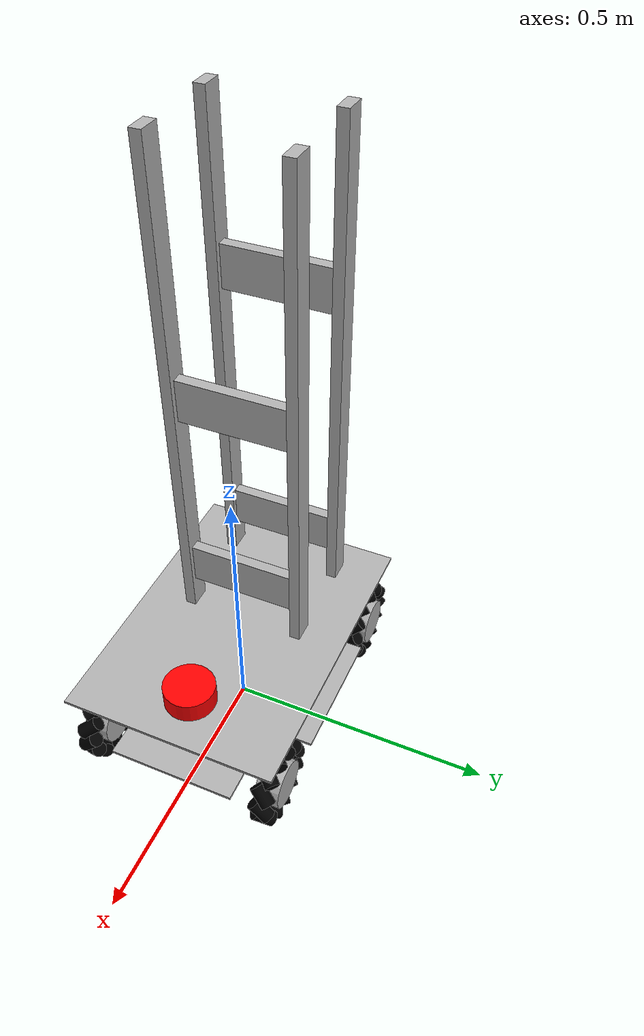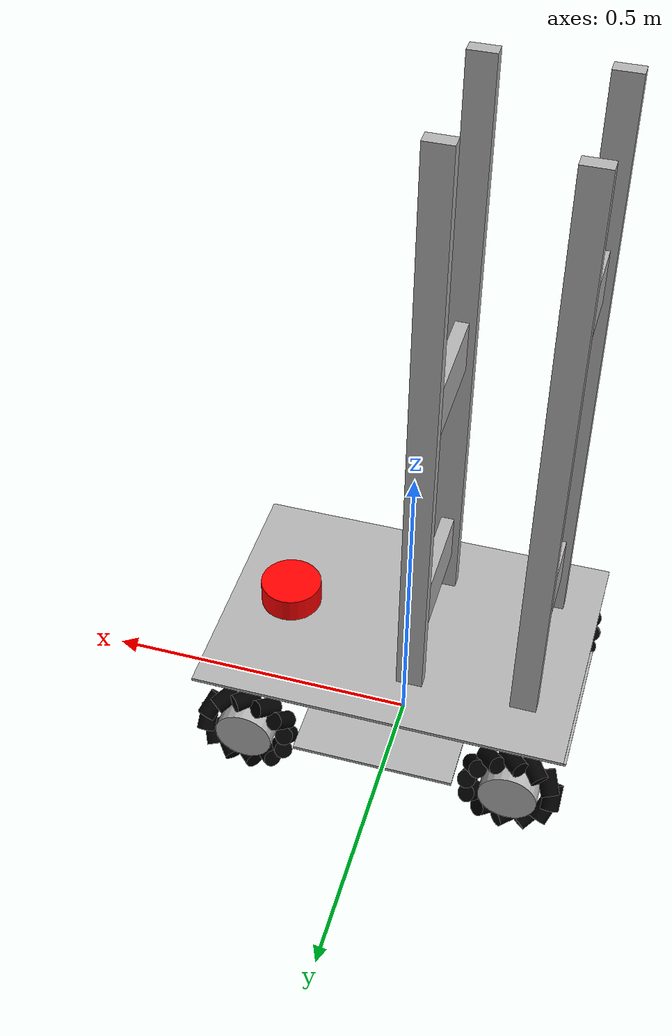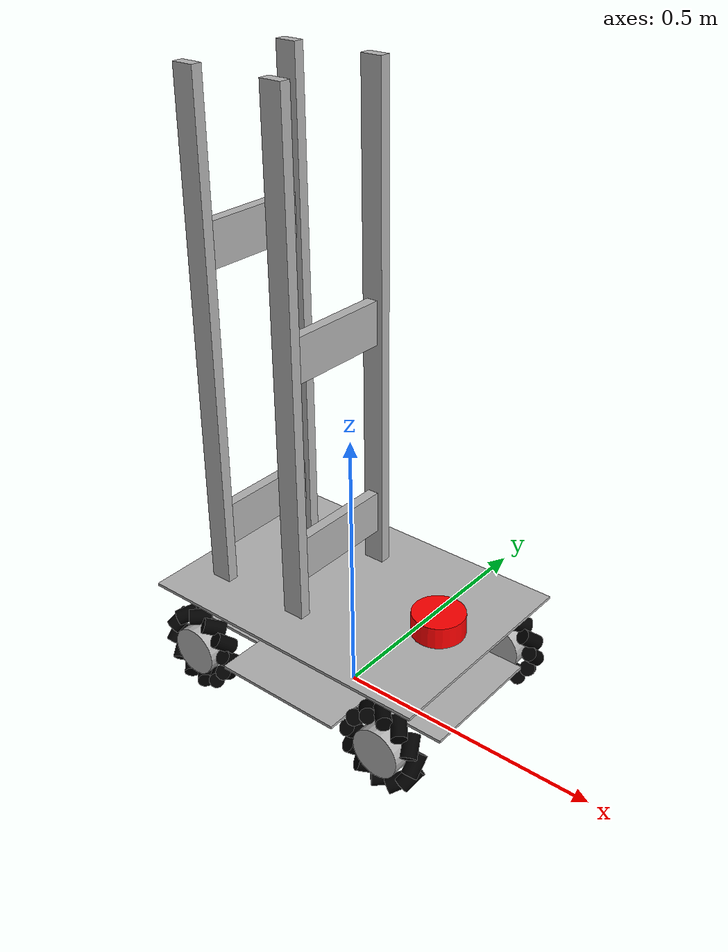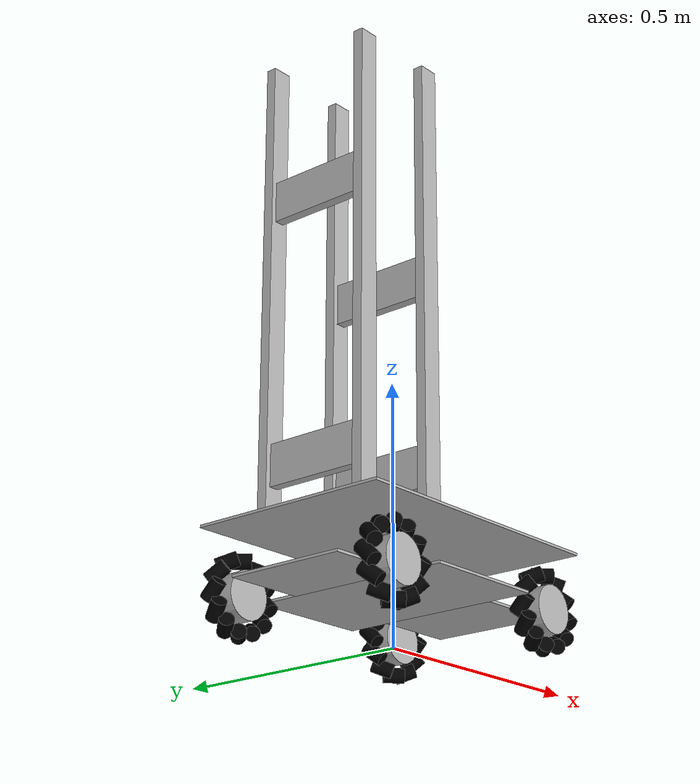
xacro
<?xml version="1.0"?>
<robot name="martha" xmlns:xacro="http://www.ros.org/wiki/xacro">

    <xacro:arg name="drive" default="mecanum" />
    <xacro:arg name="controllers_file" default="$(find martha_nav)/config/controllers.yaml" />
    <xacro:arg name="lidar_samples" default="360" />
    <xacro:arg name="lidar_visualize" default="false" />
    <!-- tower: the aluminium tower on the chassis (ROBOTS['martha_tower']). "false" is the
         robot ROBOTS['martha'] was trained for, without it. -->
    <xacro:arg name="tower" default="true" />

    <material name="black"><color rgba="0 0 0 1" /></material>
    <material name="grey"><color rgba="0.7 0.7 0.7 1" /></material>
    <material name="red"><color rgba="1 0 0 1" /></material>

    <!-- Chassis: a narrow front and rear plate around a wider centre plate. -->
    <xacro:property name="base_front_x" value="0.160" />
    <xacro:property name="base_center_x" value="0.238" />
    <xacro:property name="base_rear_x" value="0.160" />
    <xacro:property name="base_narrow_y" value="0.240" />
    <xacro:property name="base_center_y" value="0.410" />
    <xacro:property name="base_z" value="0.025" />
    <xacro:property name="height_0" value="0.125" />
    <xacro:property name="wheel_length" value="0.045" />
    <xacro:property name="wheel_radius" value="0.075" />
    <!-- Mecanum wheel: a hub plus 12 rollers reaching 0.079 m from the axle. -->
    <xacro:property name="hub_radius" value="0.045" />
    <xacro:property name="roller_radius" value="0.014" />
    <xacro:property name="roller_length" value="0.040" />
    <xacro:property name="roller_mount_radius" value="0.065" />
    <xacro:property name="roller_angle" value="0.785398" />
    <!-- Where the original model puts them. The rollers reach 0.079 m from the axle,
         so the wheels end at 0.21 + 0.079 = 0.289 m, inside the contact shell below. -->
    <xacro:property name="wheel_pos_x" value="0.21" />
    <xacro:property name="wheel_pos_y" value="0.175" />
    <xacro:property name="wheel_pos_z" value="0.08" />
    <xacro:property name="lidar_length" value="0.04" />
    <xacro:property name="lidar_radius" value="0.0475" />
    <!-- lidar_offset_x of ROBOTS['martha'] or ['martha_tower'] in martha_nav/robots.py.
         With the tower, scan_z is the scan plane, 3.1 cm above the upper board it rests on. -->
    <xacro:property name="built" value="${'$(arg tower)' == 'true'}" />
    <xacro:property name="lidar_x" value="${0.19 if built else 0.2325}" />
    <xacro:property name="contact_shell_x" value="0.580" />
    <xacro:property name="contact_shell_y" value="0.410" />
    <xacro:property name="contact_shell_center_z" value="0.125" />
    <xacro:property name="contact_shell_height" value="0.200" />
    <xacro:property name="lidar_shell_clearance" value="0.010" />
    <xacro:property name="board_z" value="0.005" />
    <xacro:property name="board_center_x" value="0.250" />
    <xacro:property name="upper_board_x" value="0.570" />
    <xacro:property name="upper_board_y" value="0.405" />
    <xacro:property name="lower_board_top" value="0.095" />
    <xacro:property name="upper_board_top" value="0.200" />
    <xacro:property name="scan_z" value="${upper_board_top + 0.031}" />
    <xacro:property name="profile" value="0.020" />
    <xacro:property name="profile_kg_per_m" value="0.5" />
    <xacro:property name="post_sx" value="0.040" />
    <xacro:property name="post_sy" value="0.020" />
    <xacro:property name="post_x_front" value="-0.033" />
    <xacro:property name="post_x_rear" value="-0.208" />
    <xacro:property name="post_y" value="0.11" />
    <xacro:property name="post_height" value="0.91" />
    <xacro:property name="crossbar_sz" value="0.080" />
    <xacro:property name="crossbar_low" value="0.065" />
    <xacro:property name="crossbar_high_front" value="0.435" />
    <xacro:property name="crossbar_high_rear" value="0.585" />

    <!-- A plate of the chassis shape: narrow ends around a wider centre, centred at height z. -->
    <xacro:macro name="chassis_plate" params="center_x thickness z">
        <visual>
            <origin xyz="${center_x/2 + base_front_x/2} 0 ${z}"/>
            <geometry><box size="${base_front_x} ${base_narrow_y} ${thickness}"/></geometry>
            <material name="grey"/>
        </visual>
        <visual>
            <origin xyz="0 0 ${z}"/>
            <geometry><box size="${center_x} ${base_center_y} ${thickness}"/></geometry>
            <material name="grey"/>
        </visual>
        <visual>
            <origin xyz="${-(center_x/2 + base_rear_x/2)} 0 ${z}"/>
            <geometry><box size="${base_rear_x} ${base_narrow_y} ${thickness}"/></geometry>
            <material name="grey"/>
        </visual>
    </xacro:macro>

    <link name="base_link">
        <xacro:unless value="${built}">
            <xacro:chassis_plate center_x="${base_center_x}" thickness="${base_z}" z="${height_0}" />
        </xacro:unless>
        <xacro:if value="${built}">
            <xacro:chassis_plate center_x="${board_center_x}" thickness="${board_z}" z="${lower_board_top - board_z/2}" />
            <visual>
                <origin xyz="0 0 ${upper_board_top - board_z/2}"/>
                <geometry><box size="${upper_board_x} ${upper_board_y} ${board_z}"/></geometry>
                <material name="grey"/>
            </visual>
        </xacro:if>

        <!-- One collision only, the contact shell. It is the rectangle the 2D
             simulator checks, 2 cm longer to cover the wheels. -->
        <collision name="contact_shell_collision">
            <origin xyz="0 0 ${contact_shell_center_z}"/>
            <geometry>
                <box size="${contact_shell_x} ${contact_shell_y} ${contact_shell_height}"/>
            </geometry>
        </collision>

        <inertial>
            <mass value="20"/>
            <inertia ixx="0.1" iyy="0.1" izz="0.1" ixy="0" ixz="0" iyz="0"/>
        </inertial>
    </link>

    <link name="lidar">
        <visual>
            <!-- With the tower the link sits at the scan plane, the housing on the board below it. -->
            <origin xyz="0 0 ${upper_board_top + lidar_length/2 - scan_z if built else 0}"/>
            <geometry><cylinder length="${lidar_length}" radius="${lidar_radius}"/></geometry>
            <material name="red" />
        </visual>
        <inertial>
            <mass value="0.1"/>
            <inertia ixx="1e-4" ixy="0.0" ixz="0.0" iyy="1e-4" iyz="0.0" izz="1e-4"/>
        </inertial>
    </link>

    <joint name="base_lidar" type="fixed">
        <parent link="base_link" />
        <child link="lidar" />
        <!-- x is the value lidar_offset_x uses. The scan plane sits above the contact shell
             so the robot never sees itself, only the tower's posts. -->
        <origin xyz="${lidar_x} 0 ${scan_z if built else contact_shell_center_z + contact_shell_height/2 + lidar_length/2 + lidar_shell_clearance}"/>
    </joint>

    <!-- One straight aluminium profile, fixed to base_link and centred on (x, y, z). -->
    <xacro:macro name="profile_bar" params="name x y z sx sy sz">
        <xacro:property name="mass" value="${profile_kg_per_m * (sx + sy + sz - 2 * profile)}" />
        <link name="${name}">
            <visual>
                <geometry><box size="${sx} ${sy} ${sz}"/></geometry>
                <material name="grey"/>
            </visual>
            <collision>
                <geometry><box size="${sx} ${sy} ${sz}"/></geometry>
            </collision>
            <inertial>
                <mass value="${mass}"/>
                <inertia ixx="${mass * (sy*sy + sz*sz) / 12}" iyy="${mass * (sx*sx + sz*sz) / 12}"
                         izz="${mass * (sx*sx + sy*sy) / 12}" ixy="0" ixz="0" iyz="0"/>
            </inertial>
        </link>
        <joint name="base_${name}_joint" type="fixed">
            <parent link="base_link" />
            <child link="${name}" />
            <origin xyz="${x} ${y} ${z}"/>
        </joint>
        <gazebo reference="${name}">
            <material>Gazebo/Grey</material>
        </gazebo>
    </xacro:macro>

    <xacro:if value="${built}">
        <xacro:property name="post_z" value="${upper_board_top + post_height/2}" />
        <xacro:property name="inner_y" value="${2*post_y - post_sy}" />
        <!-- The four posts. They cross the LiDAR's scan plane, so it sees them. -->
        <xacro:profile_bar name="tower_post_front_left" x="${post_x_front}" y="${post_y}" z="${post_z}" sx="${post_sx}" sy="${post_sy}" sz="${post_height}" />
        <xacro:profile_bar name="tower_post_front_right" x="${post_x_front}" y="${-post_y}" z="${post_z}" sx="${post_sx}" sy="${post_sy}" sz="${post_height}" />
        <xacro:profile_bar name="tower_post_rear_left" x="${post_x_rear}" y="${post_y}" z="${post_z}" sx="${post_sx}" sy="${post_sy}" sz="${post_height}" />
        <xacro:profile_bar name="tower_post_rear_right" x="${post_x_rear}" y="${-post_y}" z="${post_z}" sx="${post_sx}" sy="${post_sy}" sz="${post_height}" />
        <!-- Crossbars between the front posts and between the rear ones, given by their bottom. -->
        <xacro:profile_bar name="tower_crossbar_front_low" x="${post_x_front}" y="0" z="${upper_board_top + crossbar_low + crossbar_sz/2}" sx="${profile}" sy="${inner_y}" sz="${crossbar_sz}" />
        <xacro:profile_bar name="tower_crossbar_front_high" x="${post_x_front}" y="0" z="${upper_board_top + crossbar_high_front + crossbar_sz/2}" sx="${profile}" sy="${inner_y}" sz="${crossbar_sz}" />
        <xacro:profile_bar name="tower_crossbar_rear_low" x="${post_x_rear}" y="0" z="${upper_board_top + crossbar_low + crossbar_sz/2}" sx="${profile}" sy="${inner_y}" sz="${crossbar_sz}" />
        <xacro:profile_bar name="tower_crossbar_rear_high" x="${post_x_rear}" y="0" z="${upper_board_top + crossbar_high_rear + crossbar_sz/2}" sx="${profile}" sy="${inner_y}" sz="${crossbar_sz}" />
    </xacro:if>

    <!-- Fixed wheels for the planar drive: not actuated, they only carry the chassis. -->
    <xacro:macro name="fixed_wheel" params="name x y">
        <link name="${name}_wheel">
            <visual>
                <geometry><cylinder length="${wheel_length}" radius="${wheel_radius}" /></geometry>
                <material name="black" />
            </visual>
            <collision>
                <geometry><cylinder length="${wheel_length}" radius="${wheel_radius}" /></geometry>
            </collision>
            <inertial>
                <mass value="0.5"/>
                <inertia ixx="0.01" ixy="0.0" ixz="0.0" iyy="0.01" iyz="0.0" izz="0.01"/>
            </inertial>
        </link>
        <joint name="base_${name}_wheel_joint" type="fixed">
            <parent link="base_link" />
            <child link="${name}_wheel" />
            <origin xyz="${x} ${y} ${wheel_pos_z}" rpy="1.570796 0 0" />
        </joint>
        <gazebo reference="${name}_wheel">
            <material>Gazebo/Black</material>
            <mu1>0.2</mu1>
            <mu2>0.2</mu2>
        </gazebo>
    </xacro:macro>

    <!-- Mecanum roller. Without maxVel and minDepth the rollers chatter and the robot hops. -->
    <xacro:macro name="mecanum_roller" params="wheel_name index x y yaw pitch">
        <link name="${wheel_name}_roller_${index}">
            <visual>
                <geometry><cylinder length="${roller_length}" radius="${roller_radius}" /></geometry>
                <material name="black" />
            </visual>
            <collision>
                <geometry><cylinder length="${roller_length}" radius="${roller_radius}" /></geometry>
            </collision>
            <inertial>
                <mass value="0.03"/>
                <inertia ixx="0.00002" ixy="0.0" ixz="0.0" iyy="0.00002" iyz="0.0" izz="0.00001"/>
            </inertial>
        </link>
        <joint name="${wheel_name}_roller_${index}_joint" type="continuous">
            <parent link="${wheel_name}_wheel" />
            <child link="${wheel_name}_roller_${index}" />
            <origin xyz="${x} ${y} 0" rpy="0 ${pitch} ${yaw}" />
            <axis xyz="0 0 1" />
            <dynamics damping="0.01" friction="0.0" />
        </joint>
        <gazebo reference="${wheel_name}_roller_${index}">
            <material>Gazebo/Black</material>
            <mu1>1.0</mu1>
            <mu2>1.0</mu2>
            <kp>100000.0</kp>
            <kd>1.0</kd>
            <minDepth>0.001</minDepth>
            <maxVel>0.1</maxVel>
        </gazebo>
    </xacro:macro>

    <xacro:macro name="mecanum_wheel" params="name x y pitch">
        <link name="${name}_wheel">
            <visual>
                <geometry><cylinder length="${wheel_length}" radius="${hub_radius}" /></geometry>
                <material name="grey" />
            </visual>
            <collision>
                <geometry><cylinder length="${wheel_length}" radius="${hub_radius}" /></geometry>
            </collision>
            <inertial>
                <mass value="0.5"/>
                <inertia ixx="0.01" ixy="0.0" ixz="0.0" iyy="0.01" iyz="0.0" izz="0.01"/>
            </inertial>
        </link>
        <joint name="base_${name}_wheel_joint" type="continuous">
            <parent link="base_link" />
            <child link="${name}_wheel" />
            <origin xyz="${x} ${y} ${wheel_pos_z}" rpy="1.57 0 0" />
            <axis xyz="0 0 -1" />
        </joint>
        <xacro:mecanum_roller wheel_name="${name}" index="00" x="${roller_mount_radius}" y="0" yaw="1.570796" pitch="${pitch}" />
        <xacro:mecanum_roller wheel_name="${name}" index="01" x="${roller_mount_radius * 0.866025}" y="${roller_mount_radius * 0.5}" yaw="2.094395" pitch="${pitch}" />
        <xacro:mecanum_roller wheel_name="${name}" index="02" x="${roller_mount_radius * 0.5}" y="${roller_mount_radius * 0.866025}" yaw="2.617994" pitch="${pitch}" />
        <xacro:mecanum_roller wheel_name="${name}" index="03" x="0" y="${roller_mount_radius}" yaw="3.141593" pitch="${pitch}" />
        <xacro:mecanum_roller wheel_name="${name}" index="04" x="${-roller_mount_radius * 0.5}" y="${roller_mount_radius * 0.866025}" yaw="-2.617994" pitch="${pitch}" />
        <xacro:mecanum_roller wheel_name="${name}" index="05" x="${-roller_mount_radius * 0.866025}" y="${roller_mount_radius * 0.5}" yaw="-2.094395" pitch="${pitch}" />
        <xacro:mecanum_roller wheel_name="${name}" index="06" x="${-roller_mount_radius}" y="0" yaw="-1.570796" pitch="${pitch}" />
        <xacro:mecanum_roller wheel_name="${name}" index="07" x="${-roller_mount_radius * 0.866025}" y="${-roller_mount_radius * 0.5}" yaw="-1.047198" pitch="${pitch}" />
        <xacro:mecanum_roller wheel_name="${name}" index="08" x="${-roller_mount_radius * 0.5}" y="${-roller_mount_radius * 0.866025}" yaw="-0.523599" pitch="${pitch}" />
        <xacro:mecanum_roller wheel_name="${name}" index="09" x="0" y="${-roller_mount_radius}" yaw="0" pitch="${pitch}" />
        <xacro:mecanum_roller wheel_name="${name}" index="10" x="${roller_mount_radius * 0.5}" y="${-roller_mount_radius * 0.866025}" yaw="0.523599" pitch="${pitch}" />
        <xacro:mecanum_roller wheel_name="${name}" index="11" x="${roller_mount_radius * 0.866025}" y="${-roller_mount_radius * 0.5}" yaw="1.047198" pitch="${pitch}" />
    </xacro:macro>

    <xacro:if value="${'$(arg drive)' == 'mecanum'}">
        <xacro:mecanum_wheel name="front_left" x="${wheel_pos_x}" y="${wheel_pos_y}" pitch="${roller_angle}" />
        <xacro:mecanum_wheel name="front_right" x="${wheel_pos_x}" y="${-wheel_pos_y}" pitch="${pi - roller_angle}" />
        <xacro:mecanum_wheel name="rear_left" x="${-wheel_pos_x}" y="${wheel_pos_y}" pitch="${pi - roller_angle}" />
        <xacro:mecanum_wheel name="rear_right" x="${-wheel_pos_x}" y="${-wheel_pos_y}" pitch="${roller_angle}" />

        <ros2_control name="GazeboSystem" type="system">
            <hardware>
                <plugin>gazebo_ros2_control/GazeboSystem</plugin>
            </hardware>
            <xacro:macro name="wheel_interface" params="joint">
                <joint name="${joint}">
                    <command_interface name="velocity"/>
                    <state_interface name="velocity"/>
                    <state_interface name="position"/>
                </joint>
            </xacro:macro>
            <xacro:wheel_interface joint="base_front_left_wheel_joint" />
            <xacro:wheel_interface joint="base_front_right_wheel_joint" />
            <xacro:wheel_interface joint="base_rear_left_wheel_joint" />
            <xacro:wheel_interface joint="base_rear_right_wheel_joint" />
        </ros2_control>

        <gazebo>
            <plugin name="gazebo_ros2_control" filename="libgazebo_ros2_control.so">
                <parameters>$(arg controllers_file)</parameters>
            </plugin>
        </gazebo>
    </xacro:if>

    <xacro:unless value="${'$(arg drive)' == 'mecanum'}">
        <xacro:fixed_wheel name="front_left" x="${wheel_pos_x}" y="${wheel_pos_y}" />
        <xacro:fixed_wheel name="front_right" x="${wheel_pos_x}" y="${-wheel_pos_y}" />
        <xacro:fixed_wheel name="rear_left" x="${-wheel_pos_x}" y="${wheel_pos_y}" />
        <xacro:fixed_wheel name="rear_right" x="${-wheel_pos_x}" y="${-wheel_pos_y}" />
    <gazebo>
        <plugin name="gazebo_ros_planar_move" filename="libgazebo_ros_planar_move.so">
            <ros>
                <remapping>cmd_vel:=/cmd_vel</remapping>
                <remapping>odom:=/odom</remapping>
            </ros>
            <update_rate>100</update_rate>
            <publish_rate>50</publish_rate>
            <publish_odom>true</publish_odom>
            <!-- No EKF here: this plugin owns odom -> base_link. -->
            <publish_odom_tf>true</publish_odom_tf>
            <odometry_frame>odom</odometry_frame>
            <robot_base_frame>base_link</robot_base_frame>
            <covariance_x>0.0001</covariance_x>
            <covariance_y>0.0001</covariance_y>
            <covariance_yaw>0.001</covariance_yaw>
        </plugin>
        </gazebo>
    </xacro:unless>

    <gazebo reference="base_link">
        <material>Gazebo/Grey</material>
        <sensor name="contact_sensor" type="contact">
            <always_on>true</always_on>
            <update_rate>50</update_rate>
            <contact>
                <collision>base_link_fixed_joint_lump__contact_shell_collision_collision</collision>
            </contact>
            <plugin name="gazebo_ros_bumper" filename="libgazebo_ros_bumper.so">
                <frame_name>base_link</frame_name>
            </plugin>
        </sensor>
    </gazebo>

    <gazebo reference="lidar">
        <material>Gazebo/Green</material>
        <sensor name="lidar_sensor" type="ray">
            <always_on>true</always_on>
            <visualize>$(arg lidar_visualize)</visualize>
            <update_rate>10</update_rate>
            <ray>
                <scan>
                    <horizontal>
                        <samples>$(arg lidar_samples)</samples>
                        <resolution>1</resolution>
                        <min_angle>${-pi}</min_angle>
                        <max_angle>${pi}</max_angle>
                    </horizontal>
                </scan>
                <range>
                    <min>0.12</min>
                    <max>8.0</max>
                    <resolution>0.01</resolution>
                </range>
                <noise>
                    <type>gaussian</type>
                    <mean>0.0</mean>
                    <stddev>0.01</stddev>
                </noise>
            </ray>
            <!-- Publishes on /gazebo_ros_lidar/out; the launch file remaps it to /scan
                 for the policy (see the bumper comment above for why not here). -->
            <plugin name="gazebo_ros_lidar" filename="libgazebo_ros_ray_sensor.so">
                <output_type>sensor_msgs/LaserScan</output_type>
                <frame_name>lidar</frame_name>
            </plugin>
        </sensor>
    </gazebo>

</robot>
